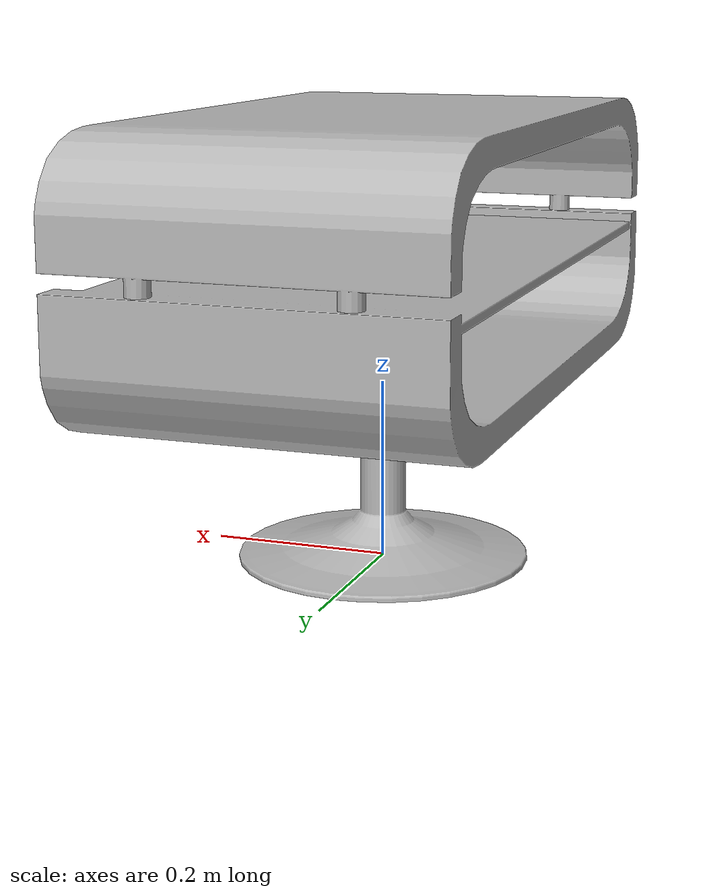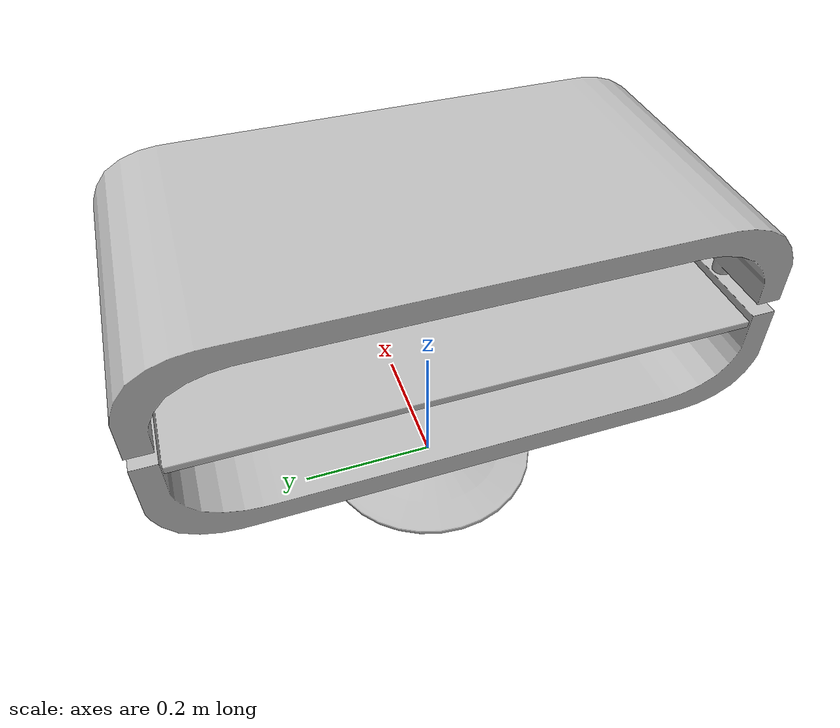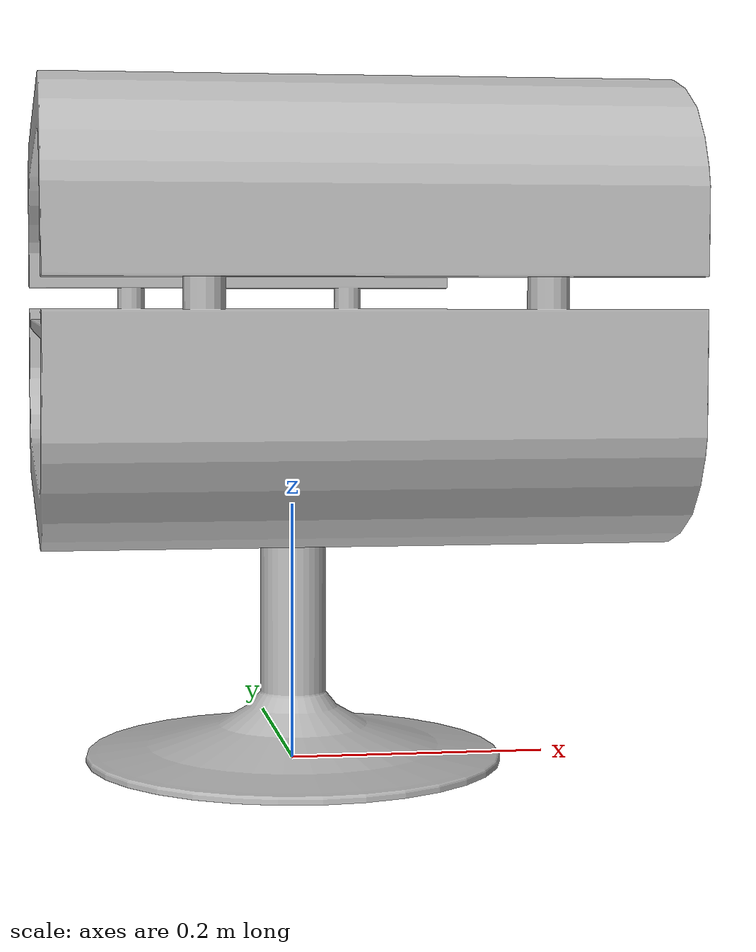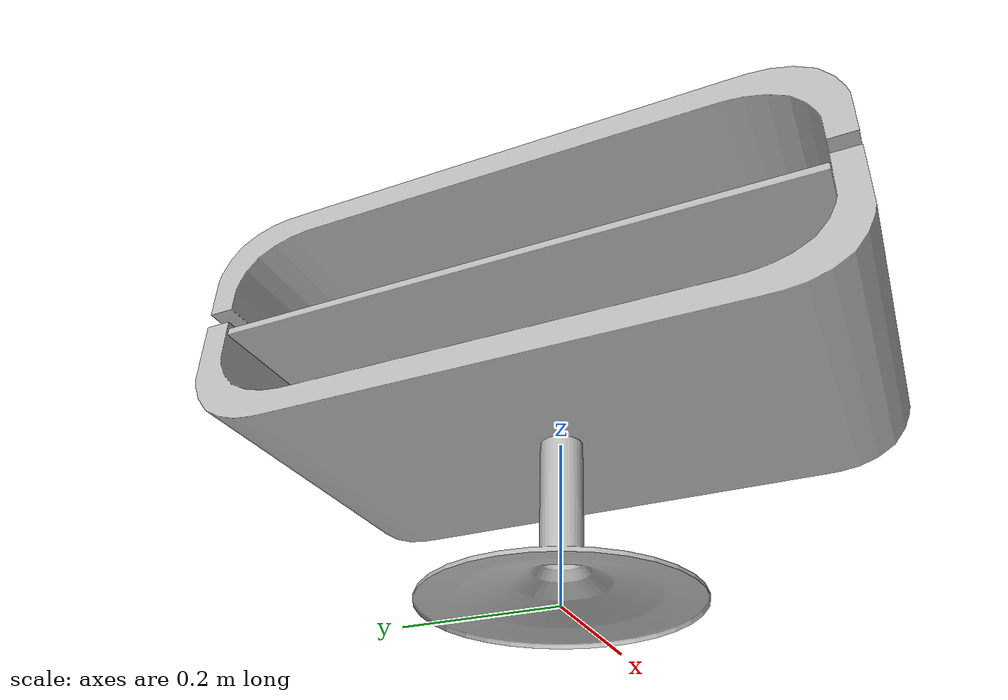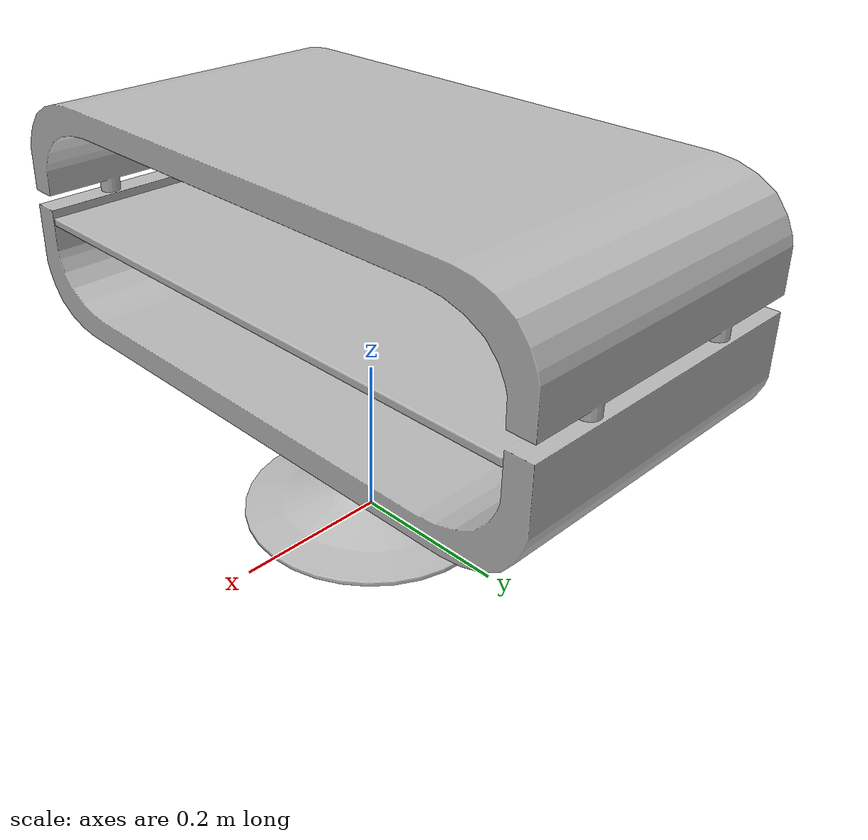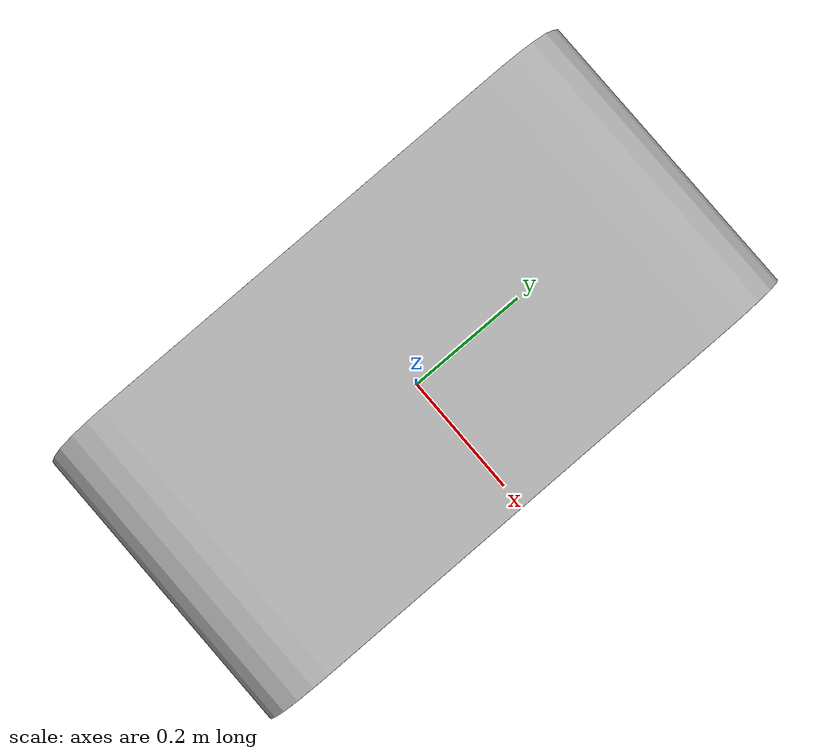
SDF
<?xml version='1.0'?>
<sdf version='1.4'>
  <model name='587'>
    <pose>0 0 0 0 0 0</pose>
    <static>true</static>
    <link name='link'>
      <collision name='collision'>
        <pose>0 0 0 0 0 0</pose>
        <geometry>
          <box>
            <size>0.399528 0.799688 2</size>
          </box>
        </geometry>
      </collision>
      <visual name='visual'>
        <pose>0 0 0 0 0 0</pose>
        <geometry>
          <mesh><uri>model://587/587.dae</uri></mesh>
        </geometry>
      </visual>
    </link>
  </model>
</sdf>
